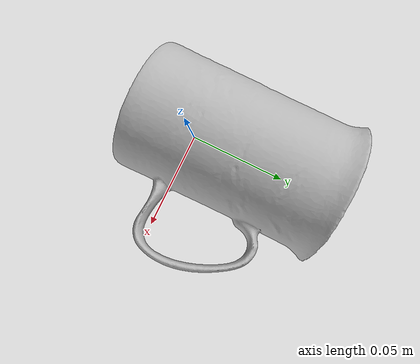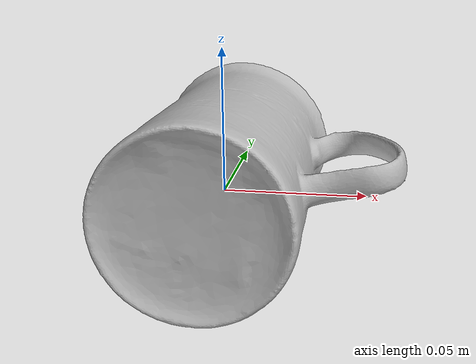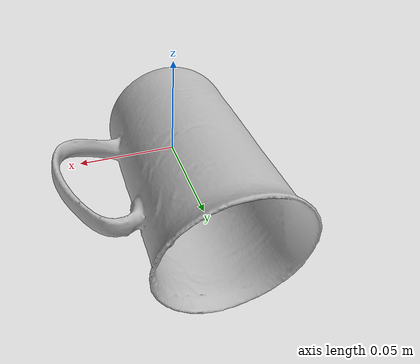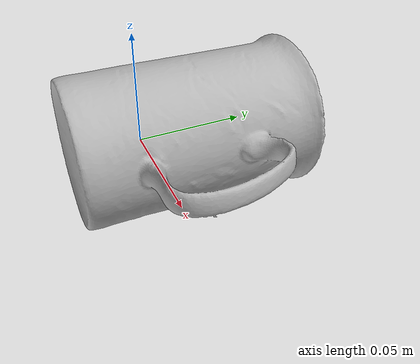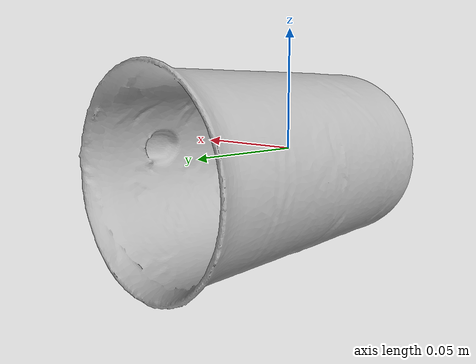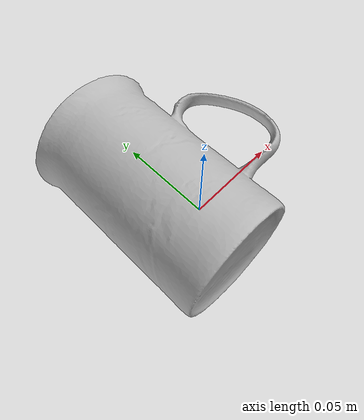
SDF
<?xml version='1.0'?>
<sdf version="1.4">
  <model name="FlowerCup">
    <static>false</static>
    <link name="link">
      <inertial>
        <pose>0.0009458982150016363 0.024369318757893287 -0.0024978184808223006 -1.4909975247287441 -1.3895990523547437 3.1149184764826647</pose>
        <mass>0.05407406376792638</mass>
        <inertia>
          <ixx>8.063388180744739e-05</ixx>
          <ixy>5.411740005782777e-21</ixy>
          <ixz>2.2321001633599238e-20</ixz>
          <iyy>6.804601995513541e-05</iyy>
          <iyz>-4.0098447079109654e-21</iyz>
          <izz>4.573381747197821e-05</izz>
        </inertia>
      </inertial>
      <collision name="collision">
        <geometry>
          <mesh>
            <!-- Use a downsampled mesh for collisions -->
            <uri>model:///FlowerCup/FlowerCup_250_collision.obj</uri>
	        </mesh>
        </geometry>
        <surface>
      </surface>
      </collision>
      <visual name="visual">
        <geometry>
          <mesh>
            <uri>model:///FlowerCup/FlowerCup_25k_tex.obj</uri>
	        </mesh>
        </geometry>
        <material>
          <script>
            <uri>model:///FlowerCup/FlowerCup.material</uri>
            <name>FlowerCup</name>
          </script>
        </material>
      </visual>
    </link>
  </model>
</sdf>
